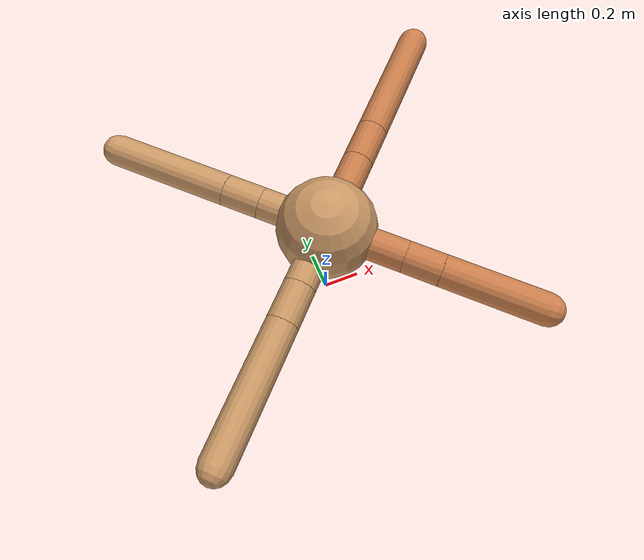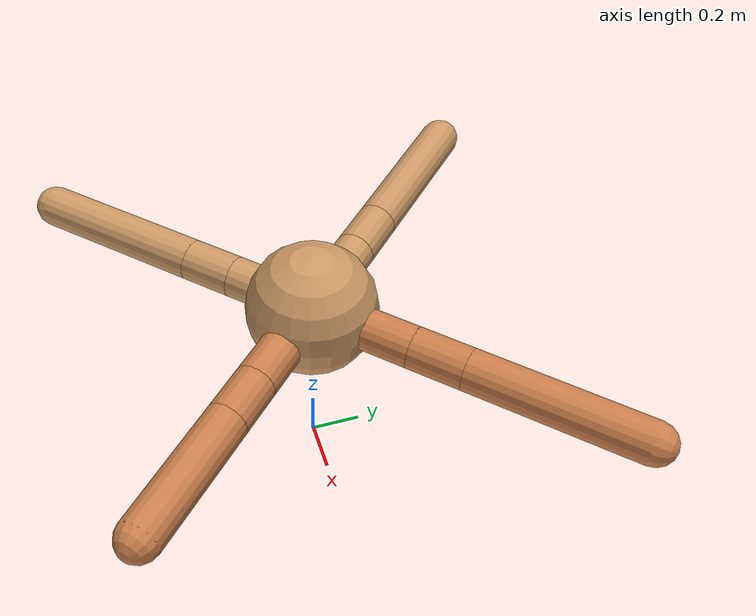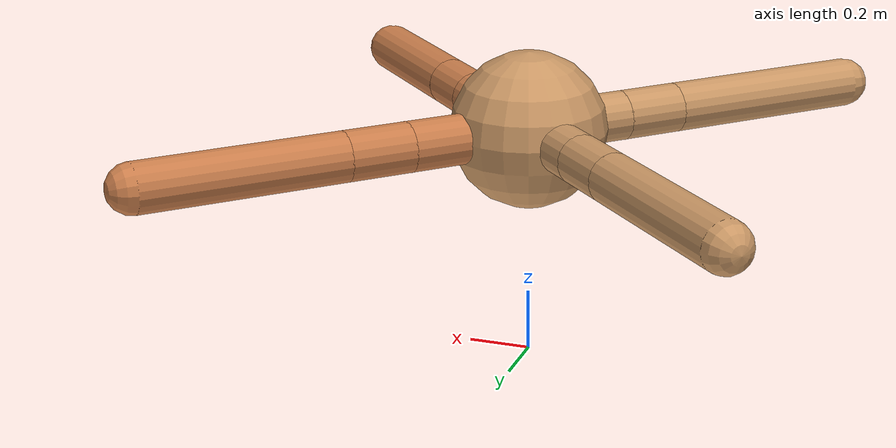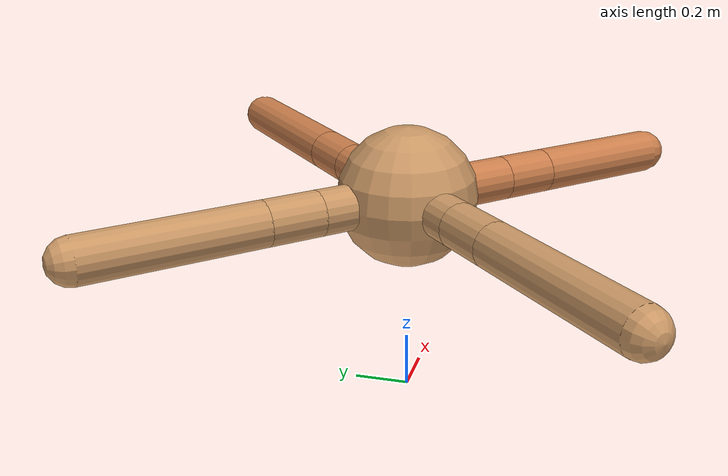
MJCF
<mujoco model="ant">
  <compiler angle="degree" coordinate="local" inertiafromgeom="true" />
  <option integrator="RK4" timestep="0.01" />
  <custom>
    <numeric data="0.0 0.0 0.55 1.0 0.0 0.0 0.0 0.0 1.0 0.0 -1.0 0.0 -1.0 0.0 1.0" name="init_qpos" />
  </custom>
  <default>
    <joint armature="1" damping="1" limited="true" />
    <geom conaffinity="0" condim="3" density="5.0" friction="1.5 0.1 0.1" margin="0.01" rgba="0.8 0.6 0.4 1" />
  </default>
  <worldbody>
    <body name="torso" pos="0 0 0.75">
      <geom name="torso_geom" pos="0 0 0" size="0.25" type="sphere" />

      <body name="front_left_leg" pos="0 0 0">
        <geom fromto="0.0 0.0 0.0 0.2918732163320604 0.2918732163320604 0.0" name="aux_1_geom" size="0.08" type="capsule" rgba=".8 .5 .3 1" />
        <body name="aux_1" pos="0.2918732163320604 0.2918732163320604 0.0">
          <joint axis="0 0 1" name="hip_1" pos="0.0 0.0 0.0" range="-40 40" type="hinge" />
          <geom fromto="0.0 0.0 0.0 0.14774861669251085 0.14774861669251085 0.0" name="left_leg_geom" size="0.08" type="capsule" rgba=".8 .5 .3 1" />
          <body pos="0.14774861669251085 0.14774861669251085 0.0" name="front_left_foot">
            <joint axis="-1 1 0" name="ankle_1" pos="0.0 0.0 0.0" range="30 100" type="hinge" />
            <geom fromto="0.0 0.0 0.0 0.4657727151504988 0.4657727151504988 0.0" name="left_ankle_geom" size="0.08" type="capsule" rgba=".8 .5 .3 1" />
          </body>
        </body>
      </body>
      <body name="front_right_leg" pos="0 0 0">
        <geom fromto="0.0 0.0 0.0 -0.24501997228733036 0.24501997228733036 0.0" name="aux_2_geom" size="0.08" type="capsule" />
        <body name="aux_2" pos="-0.24501997228733036 0.24501997228733036 0.0">
          <joint axis="0 0 1" name="hip_2" pos="0.0 0.0 0.0" range="-40 40" type="hinge" />
          <geom fromto="0.0 0.0 0.0 -0.13669972668027972 0.13669972668027972 0.0" name="right_leg_geom" size="0.08" type="capsule" />
          <body pos="-0.13669972668027972 0.13669972668027972 0.0" name="front_right_foot">
            <joint axis="1 1 0" name="ankle_2" pos="0.0 0.0 0.0" range="-100 -30" type="hinge" />
            <geom fromto="0.0 0.0 0.0 -0.44004971083833966 0.44004971083833966 0.0" name="right_ankle_geom" size="0.08" type="capsule" />
          </body>
        </body>
      </body>
      <body name="left_back_leg" pos="0 0 0">
        <geom fromto="0.0 0.0 0.0 -0.2365044720551427 -0.2365044720551427 0.0" name="aux_3_geom" size="0.08" type="capsule" />
        <body name="aux_3" pos="-0.2365044720551427 -0.2365044720551427 0.0">
          <joint axis="0 0 1" name="hip_3" pos="0.0 0.0 0.0" range="-40 40" type="hinge" />
          <geom fromto="0.0 0.0 0.0 -0.13700611169321505 -0.13700611169321505 0.0" name="back_leg_geom" size="0.08" type="capsule" />
          <body pos="-0.13700611169321505 -0.13700611169321505 0.0" name="left_back_foot">
            <joint axis="-1 1 0" name="ankle_3" pos="0.0 0.0 0.0" range="-100 -30" type="hinge" />
            <geom fromto="0.0 0.0 0.0 -0.4696970243448531 -0.4696970243448531 0.0" name="third_ankle_geom" size="0.08" type="capsule" />
          </body>
        </body>
      </body>
      <body name="right_back_leg" pos="0 0 0">
        <geom fromto="0.0 0.0 0.0 0.28506252513758534 -0.28506252513758534 0.0" name="aux_4_geom" size="0.08" type="capsule" rgba=".8 .5 .3 1" />
        <body name="aux_4" pos="0.28506252513758534 -0.28506252513758534 0.0">
          <joint axis="0 0 1" name="hip_4" pos="0.0 0.0 0.0" range="-40 40" type="hinge" />
          <geom fromto="0.0 0.0 0.0 0.12937359273661583 -0.12937359273661583 0.0" name="rightback_leg_geom" size="0.08" type="capsule" rgba=".8 .5 .3 1" />
          <body pos="0.12937359273661583 -0.12937359273661583 0.0" name="right_back_foot">
            <joint axis="1 1 0" name="ankle_4" pos="0.0 0.0 0.0" range="30 100" type="hinge" />
            <geom fromto="0.0 0.0 0.0 0.35595199425383184 -0.35595199425383184 0.0" name="fourth_ankle_geom" size="0.08" type="capsule" rgba=".8 .5 .3 1" />
          </body>
        </body>
      </body>
    </body>
  </worldbody>
  <actuator>
    <motor ctrllimited="true" ctrlrange="-1.0 1.0" joint="hip_4" gear="150" />
    <motor ctrllimited="true" ctrlrange="-1.0 1.0" joint="ankle_4" gear="150" />
    <motor ctrllimited="true" ctrlrange="-1.0 1.0" joint="hip_1" gear="150" />
    <motor ctrllimited="true" ctrlrange="-1.0 1.0" joint="ankle_1" gear="150" />
    <motor ctrllimited="true" ctrlrange="-1.0 1.0" joint="hip_2" gear="150" />
    <motor ctrllimited="true" ctrlrange="-1.0 1.0" joint="ankle_2" gear="150" />
    <motor ctrllimited="true" ctrlrange="-1.0 1.0" joint="hip_3" gear="150" />
    <motor ctrllimited="true" ctrlrange="-1.0 1.0" joint="ankle_3" gear="150" />
  </actuator>
</mujoco>
